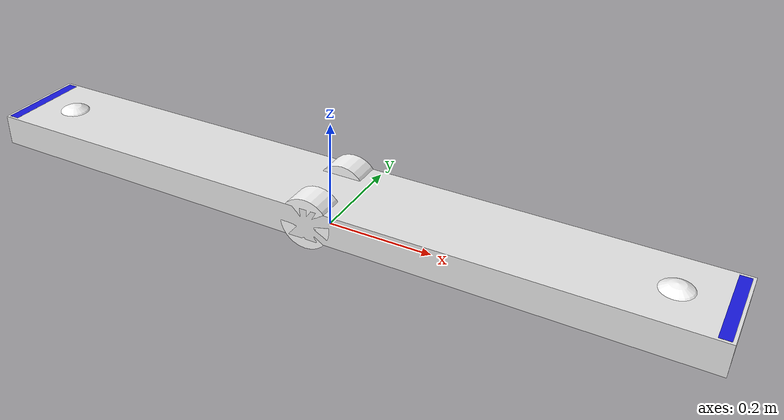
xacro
<?xml version="1.0"?>
<robot xmlns:xacro="http://ros.org/wiki/xacro" name="$(arg tf_prefix)twinfork_robot">

    <xacro:arg name="tf_prefix" default="" />
    <xacro:arg name="param_file" default="" />
    <xacro:arg name="robot_color" default="Gazebo/White" />

    <xacro:property name="base_color" value="$(arg robot_color)" />
    <!-- prefix can not start with a slash like a global namespace! results in TF errors -->
    <xacro:property name="ns" value="$(arg tf_prefix)" />
    <xacro:property name="prefix" value="${ns}/" />

    <!-- include configs and macros -->
    <xacro:include filename="$(find twinfork_description)/urdf/mech/wheels.xacro" />
    <xacro:include filename="$(find twinfork_description)/urdf/mech/twinfork.transmission.xacro" />
    <xacro:include filename="$(find twinfork_description)/urdf/common_properties.urdf.xacro" />
    <xacro:include filename="$(find twinfork_description)/urdf/controllers/diffdrive_gazebo.xacro" />
    <xacro:include filename="$(find twinfork_description)/urdf/sensors/laserscan.xacro" />
    <xacro:include filename="$(find twinfork_description)/urdf/sensors/imu.xacro" />

    <!-- base footprint -->
    <link name="${prefix}base_footprint" />
    <joint name="${prefix}base_to_link" type="fixed">
        <parent link="${prefix}base_footprint" />
        <child link="${prefix}base_link" />
        <origin xyz="0 0 ${wheel_radius + wheel_zoff}" rpy="0 0 0" />
    </joint>

    <!-- base link -->
    <link name="${prefix}base_link">
        <visual>
            <geometry>
                <box size="${base_length} ${base_width} ${base_height}" />
            </geometry>
        </visual>
        <collision>
            <geometry>
                <box size="${base_length} ${base_width} ${base_height}" />
            </geometry>
        </collision>
        <xacro:box_inertial mass="5.0" x="${base_length}" y="${base_width}" z="${base_height}">
            <origin xyz="0 0 0" rpy="0 0 0" />
        </xacro:box_inertial>
    </link>
    <gazebo reference="${prefix}base_link">
        <material>${base_color}</material>
    </gazebo>

    <!-- wheels and casters -->
    <xacro:drive_wheel prefix="${prefix}drivewhl_l" x_off="-${wheel_xoff}" y_off="${wheel_ygap}"
        base_prefix="${prefix}" />
    <xacro:drive_wheel prefix="${prefix}drivewhl_r" x_off="${wheel_xoff}" y_off="-${wheel_ygap}"
        base_prefix="${prefix}" />
    <xacro:caster_wheel prefix="${prefix}front_caster" x_off="${caster_xoff}"
        base_prefix="${prefix}" color="Gazebo/White" />
    <xacro:caster_wheel prefix="${prefix}back_caster" x_off="-${caster_xoff}"
        base_prefix="${prefix}" />

    <!-- *********************** LIDAR SETUP **********************************  -->
    <!-- Front laser –– ยิงไปข้างหน้า -->

    <!-- Back laser –– ยิงกลับหลัง (หมุน 180°) -->

    <!-- *********************** IMU SETUP *********************************  -->

    <link name="${prefix}lifter_link">
        <visual>
            <origin xyz="${-base_length/2 + 0.005} ${base_width/2 - 0.005} -0.03" rpy="1.57 0 0" />
            <geometry>
                <mesh
                    filename="package://twinfork_description/meshes/lifter/prismatic_lifter.STL"
                    scale="0.001 0.001 0.001" />

            </geometry>
            <material name="Blue">
                <color rgba="0.1 0.1 0.9 1.0" />
            </material>
        </visual>
        <collision>
            <origin xyz="${-base_length/2 + 0.005} ${base_width/2 - 0.005} -0.03" rpy="1.57 0 0" />
            <geometry>
                <mesh
                    filename="package://twinfork_description/meshes/lifter/prismatic_lifter.STL"
                    scale="0.001 0.001 0.001" />
            </geometry>
        </collision>
        <xacro:box_inertial mass="5.0" x="${base_length-0.01}" y="${base_width-0.01}"
            z="${0.01}">
            <origin xyz="0 0 -0.05" rpy="0 0 0" />
        </xacro:box_inertial>
    </link>
    <gazebo reference="${prefix}lifter_link">
        <mu1>10.0</mu1>
        <mu2>10.1</mu2>
        <kp>1.0</kp>
        <kd>1e20</kd>
    </gazebo>

    <joint name="${prefix}lifter" type="prismatic">
        <parent link="${prefix}base_link" />
        <child link="${prefix}lifter_link" />
        <!-- origin ตั้งตำแหน่งเริ่มต้น -->
        <origin xyz="0 0 0" rpy="0 0 0" />
        <!-- แกน Z บน base_link -->
        <axis xyz="0 0 1" />
        <limit lower="0.0" upper="0.1" effort="1000" velocity="0.1" />
    </joint>

    <ros2_control name="GazeboSystem" type="system">
        <hardware>
            <plugin>gazebo_ros2_control/GazeboSystem</plugin>
        </hardware>
        <joint name="${prefix}lifter">
            <command_interface name="effort">
                <param name="min">-1000</param>
                <param name="max">1000</param>
            </command_interface>
            <state_interface name="position" />
            <state_interface name="velocity" />
            <state_interface name="effort" />
        </joint>
    </ros2_control>

    <gazebo>
        <plugin filename="libgazebo_ros2_control.so" name="${ns}_gazebo_ros2_control">
            <ros>
                <namespace>${ns}</namespace>
            </ros>
            <parameters>$(arg param_file)</parameters>
            <robot_param_node>/${ns}/robot_state_publisher</robot_param_node>
        </plugin>
    </gazebo>

    <!-- lifter, transmissions, ros2_control unchanged -->
    <xacro:twinfork_wheel_transmissions />

    <xacro:diff_controller_plugin_gazebo
        prefix="${prefix}" ns="${ns}"
        left_wheel_joint="${prefix}drivewhl_l_wheel_joint"
        right_wheel_joint="${prefix}drivewhl_r_wheel_joint"
        wheel_separation="${2*wheel_ygap}"
        wheel_radius="${wheel_radius}"
    />
</robot>

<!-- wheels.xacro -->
<robot xmlns:xacro="http://ros.org/wiki/xacro">
    <xacro:include filename="$(find twinfork_description)/urdf/common_properties.urdf.xacro" />

    <xacro:macro name="drive_wheel" params="prefix x_off y_off base_prefix">
        <link name="${prefix}_wheel_link">
            <visual>
                <origin xyz="0 0 0" rpy="${pi/2} 0 0" />
                <geometry>
                    <cylinder radius="${wheel_radius}" length="${wheel_width}" />
                </geometry>
                <xacro:insert_block name="material_white" />
            </visual>
            <collision>
                <origin xyz="0 0 0" rpy="${pi/2} 0 0" />
                <geometry>
                    <cylinder radius="${wheel_radius}" length="${wheel_width}" />
                </geometry>
            </collision>
            <xacro:cylinder_inertial mass="1.0" radius="${wheel_radius}" length="${wheel_width}">
                <origin xyz="0 0 0" rpy="${pi/2} 0 0" />
            </xacro:cylinder_inertial>
        </link>
        <joint name="${prefix}_wheel_joint" type="continuous">
            <parent link="${base_prefix}base_link" />
            <child link="${prefix}_wheel_link" />
            <origin xyz="${x_off} ${y_off} ${-wheel_zoff}" rpy="0 0 0" />
            <axis xyz="0 1 0" />
        </joint>
        <gazebo reference="${prefix}_wheel_link">
            <mu1>10.0</mu1>
            <mu2>10.0</mu2>
            <material>Gazebo/Black</material>
        </gazebo>
    </xacro:macro>

    <xacro:macro name="caster_wheel" params="prefix x_off base_prefix color='Gazebo/Black'">
        <link name="${prefix}_caster_link">
            <visual>
                <geometry>
                    <sphere radius="${caster_radius}" />
                </geometry>
                <xacro:insert_block name="material_white" />
            </visual>
            <collision>
                <geometry>
                    <sphere radius="${caster_radius}" />
                </geometry>
            </collision>
            <xacro:sphere_inertial mass="0.1" radius="${caster_radius}">
                <origin xyz="0 0 0" rpy="0 0 0" />
            </xacro:sphere_inertial>
        </link>
        <joint name="${prefix}_caster_joint" type="fixed">
            <parent link="${base_prefix}base_link" />
            <child link="${prefix}_caster_link" />
            <origin xyz="${x_off} 0 ${-(wheel_radius+wheel_zoff-caster_radius-0.0001)}" rpy="0 0 0" />
        </joint>
        <gazebo reference="${prefix}_caster_link">
            <mu1>0.0</mu1>
            <mu2>0.0</mu2>
            <material>${color}</material>
        </gazebo>
    </xacro:macro>
</robot>

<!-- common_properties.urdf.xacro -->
<!--
  Various useful properties such as constants and materials
 -->
<robot name="xacro_properties" xmlns:xacro="http://ros.org/wiki/xacro">
  <!-- #################### Robot materials #################### -->
  <xacro:property name="base_length" value="1.4" />
  <xacro:property name="base_width"  value="0.18" />
  <xacro:property name="base_height" value="0.06" />
  <xacro:property name="wheel_radius" value="0.049" />
  <xacro:property name="wheel_width"  value="0.05" />
  <xacro:property name="wheel_ygap" value="0.065" />
  <xacro:property name="wheel_zoff" value="0.0" />
  <xacro:property name="wheel_xoff" value="0.0" />
  <xacro:property name="caster_xoff" value="0.6" />
  <xacro:property name="caster_radius" value="0.045" />
  <xacro:property name="imu_stdev" value="0.00017" />
  <!-- #################### RViz materials #################### -->
  <xacro:property name="material_white">
    <material name="white">
      <color rgba="1 1 1 1"/>
    </material>
  </xacro:property>
  <xacro:property name="material_yellow">
    <material name="yellow">
      <color rgba="${255/255} ${226/255} ${0/255} 1"/>
    </material>
  </xacro:property>
  <xacro:property name="material_almost_white">
    <material name="almost_white">
      <color rgba="0.9 0.9 0.9 1" />
    </material>
  </xacro:property>
  <xacro:property name="material_grey">
    <material name="grey">
      <color rgba="0.5 0.5 0.5 1"/>
    </material>
  </xacro:property>
  <xacro:property name="material_light_grey">
    <material name="light_grey">
      <color rgba="0.6 0.6 0.6 1"/>
    </material>
  </xacro:property>
  <xacro:property name="material_dark_grey">
    <material name="dark_grey">
      <color rgba="0.3 0.3 0.3 1"/>
    </material>
  </xacro:property>
  <xacro:property name="material_black">
    <material name="black">
      <color rgba="0.1 0.1 0.1 1"/>
    </material>
  </xacro:property>
  <xacro:property name="material_aluminum">
    <material name="aluminum">
      <color rgba="0.8 0.8 0.8 1" />
    </material>
  </xacro:property>
  <xacro:property name="material_silver">
    <material name="silver">
      <color rgba="0.79 0.82 0.93 1" />
    </material>
  </xacro:property>
  <xacro:property name="material_red">
    <material name="red">
      <color rgba="1 0 0 1" />
    </material>
  </xacro:property>

  <!-- #################### inertials with origin #################### -->
  <!-- see https://secure.wikimedia.org/wikipedia/en/wiki/List_of_moment_of_inertia_tensors -->
  <xacro:macro name="sphere_inertial" params="radius mass *origin">
    <inertial>
      <mass value="${mass}" />
      <xacro:insert_block name="origin" />
      <inertia ixx="${0.4 * mass * radius * radius}" ixy="0.0" ixz="0.0"
        iyy="${0.4 * mass * radius * radius}" iyz="0.0"
        izz="${0.4 * mass * radius * radius}" />
    </inertial>
  </xacro:macro>

  <xacro:macro name="cylinder_inertial" params="radius length mass *origin">
    <inertial>
      <mass value="${mass}" />
      <xacro:insert_block name="origin" />
      <inertia ixx="${0.0833333 * mass * (3 * radius * radius + length * length)}" ixy="0.0" ixz="0.0"
        iyy="${0.0833333 * mass * (3 * radius * radius + length * length)}" iyz="0.0"
        izz="${0.5 * mass * radius * radius}" />
    </inertial>
  </xacro:macro>

  <xacro:macro name="box_inertial" params="x y z mass *origin">
    <inertial>
      <mass value="${mass}" />
      <xacro:insert_block name="origin" />
      <inertia ixx="${0.0833333 * mass * (y*y + z*z)}" ixy="0.0" ixz="0.0"
        iyy="${0.0833333 * mass * (x*x + z*z)}" iyz="0.0"
        izz="${0.0833333 * mass * (x*x + y*y)}" />
    </inertial>
  </xacro:macro>
</robot>

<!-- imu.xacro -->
<robot xmlns:xacro="http://ros.org/wiki/xacro">
  <!-- If tf_prefix is given, use "frame tf_prefix/imu_frame", else "imu_frame" -->
  <xacro:arg name="tf_prefix" default="" />
  <xacro:property name="tf_prefix" value="$(arg tf_prefix)" />
  <xacro:if value="${tf_prefix == ''}">
      <xacro:property name="imu_frame" value="imu_frame" />
  </xacro:if>
  <xacro:unless value="${tf_prefix == ''}">
      <xacro:property name="imu_frame" value="$(arg tf_prefix)/imu_frame" />
  </xacro:unless>

  <xacro:macro name="imu_gazebo" params="link namespace update_rate stdev">
    <gazebo reference="${link}">
      <gravity>true</gravity>
      <sensor name="imu_sensor" type="imu">
        <always_on>true</always_on>
        <update_rate>${update_rate}</update_rate>
        <visualize>true</visualize>
        <imu>
          <angular_velocity>
            <x>
              <noise type="gaussian">
                <mean>0.0</mean>
                <stddev>${stdev}</stddev>
                <bias_mean>0.0000075</bias_mean>
                <bias_stddev>0.0000008</bias_stddev>
              </noise>
            </x>
            <y>
              <noise type="gaussian">
                <mean>0.0</mean>
                <stddev>${stdev}</stddev>
                <bias_mean>0.0000075</bias_mean>
                <bias_stddev>0.0000008</bias_stddev>
              </noise>
            </y>
            <z>
              <noise type="gaussian">
                <mean>0.0</mean>
                <stddev>${stdev}</stddev>
                <bias_mean>0.0000075</bias_mean>
                <bias_stddev>0.0000008</bias_stddev>
              </noise>
            </z>
          </angular_velocity>
          <linear_acceleration>
            <x>
              <noise type="gaussian">
                <mean>0.0</mean>
                <stddev>${stdev}</stddev>
                <bias_mean>0.1</bias_mean>
                <bias_stddev>0.001</bias_stddev>
              </noise>
            </x>
            <y>
              <noise type="gaussian">
                <mean>0.0</mean>
                <stddev>${stdev}</stddev>
                <bias_mean>0.1</bias_mean>
                <bias_stddev>0.001</bias_stddev>
              </noise>
            </y>
            <z>
              <noise type="gaussian">
                <mean>0.0</mean>
                <stddev>${stdev}</stddev>
                <bias_mean>0.1</bias_mean>
                <bias_stddev>0.001</bias_stddev>
              </noise>
            </z>
          </linear_acceleration>
        </imu>
        <plugin filename="libgazebo_ros_imu_sensor.so" name="imu_plugin">
        <initial_orientation_as_reference>false</initial_orientation_as_reference>
          <ros>
            <namespace>${namespace}</namespace>
            <remapping>~/out:=/${namespace}/imu_data</remapping>
            <frame_name>${imu_frame}</frame_name>  <!-- from real MiR -->
          </ros>
          <robot_param_node>/${namespace}/robot_state_publisher</robot_param_node>
        </plugin>
      </sensor>
    </gazebo>
  </xacro:macro>
</robot>
